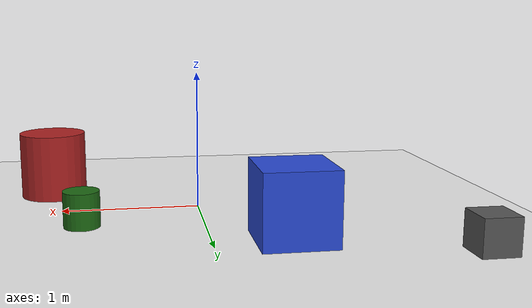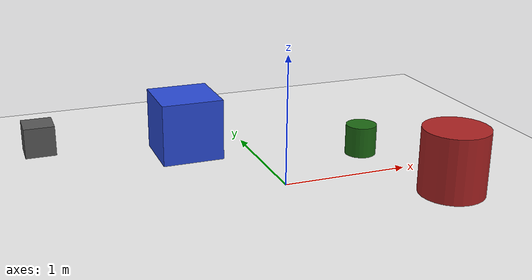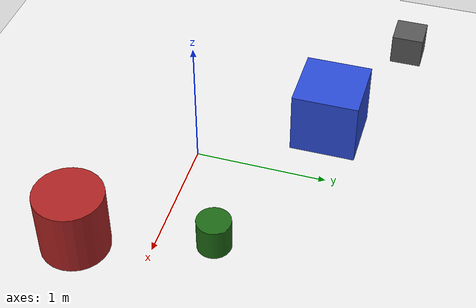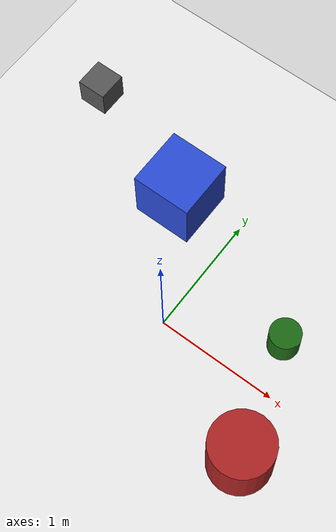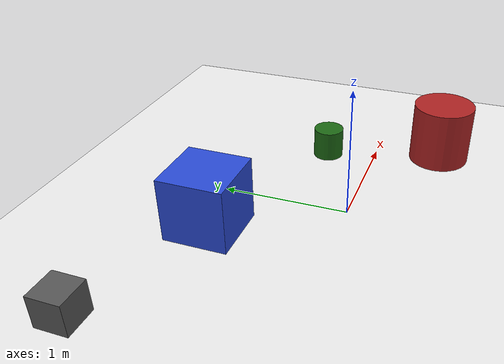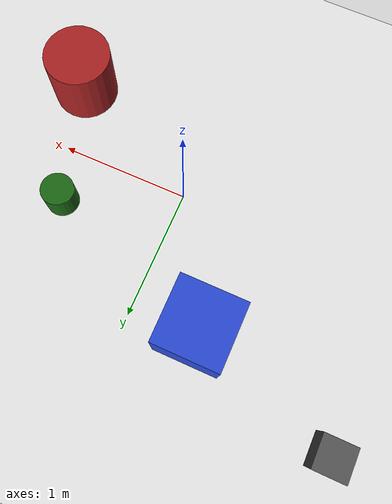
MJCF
<?xml version="1.0" ?><mujoco>
		<visual>
    			<headlight ambient="1.0 1.0 1.0" diffuse=".0 .0 .0" specular="0.0 0.0 0.0"/>
		</visual>
    	<compiler angle="radian" coordinate="local" meshdir="../stls/fetch" texturedir="../textures"/>
    	<option cone="elliptic" timestep="0.001"/>

    	<asset>
        		<texture builtin="gradient" height="32" rgb1="0.44 0.85 0.56" rgb2="0.46 0.87 0.58" type="skybox" width="32"/>
        		<texture file="block.png" gridlayout=".U..LFRB.D.." gridsize="3 4" name="texture_block"/>

        		<material name="seg_mat" reflectance="0" shininess="0" specular="0"/>
        		<material name="floor_mat" reflectance="0" rgba="0.2 0.2 0.2 1" shininess="0.5" specular="0"/>
        		<material name="table_mat" reflectance="0" rgba="0.93 0.93 0.93 1" shininess="0.5" specular="0" texrepeat="1 1"/>
        		<material name="block_mat" reflectance="0" rgba="0.2 0.2 0.2 1" shininess="0.5" specular="0"/>
        		<material name="puck_mat" reflectance="0" rgba="0.2 0.2 0.2 1" shininess="0.5" specular="0"/>
    	</asset>

    	<worldbody>
        		<geom material="table_mat" name="table0" pos="0 0 -0.05" size="2.5 2.5 0.1" type="plane"/>

        		<body name="external_camera_body_0" pos="0 0 0">
            			<camera euler="0 1.3 1.57" fovy="38" name="external_camera_0" pos="2.15 1.0 0.4"/>
        		</body>
        		<body name="external_camera_body_1" pos="0 0 0">
            			<camera euler="0 0.1 1.57" fovy="60" name="external_camera_1" pos="1.4 1.0 0.9"/>
        		</body>
        		<body mocap="true" name="camera_mover" pos="0 0 0.4">
            			<camera euler="0 1.3 1.57" fovy="38" name="agent_camera"/>
        		</body>
    		<body name="0" pos="-1.6574794868343332 1.319970412881243 0.125">			<geom condim="4" friction="1.0 0.5 0.5" mass=".1" name="0" pos="0 0 0" rgba="0.3411764705882353 0.3411764705882353 0.3411764705882353 1.0" size="0.125 0.125 0.125" solimp="0.99 0.99 0.001" solref="0.001 1" type="box"/>			<joint damping=".01" name="0" type="free"/>			<site name="0" pos="0 0 0" rgba="1 0 0 1" size="0.002 0.002 0.002" type="sphere"/>		</body>		<body name="1" pos="0.8332898485180791 0.4018103923094434 0.125">			<geom condim="4" friction="1.0 0.5 0.5" mass=".1" name="1" pos="0 0 0" rgba="0.11372549019607843 0.4117647058823529 0.0784313725490196 1.0" size="0.125 0.125 0.125" solimp="0.99 0.99 0.001" solref="0.001 1" type="cylinder"/>			<joint damping=".01" name="1" type="free"/>			<site name="1" pos="0 0 0" rgba="1 0 0 1" size="0.002 0.002 0.002" type="sphere"/>		</body>		<body name="2" pos="-0.5189762657008687 0.9038676829821637 0.25">			<geom condim="4" friction="1.0 0.5 0.5" mass=".1" name="2" pos="0 0 0" rgba="0.16470588235294117 0.29411764705882354 0.8431372549019608 1.0" size="0.25 0.25 0.25" solimp="0.99 0.99 0.001" solref="0.001 1" type="box"/>			<joint damping=".01" name="2" type="free"/>			<site name="2" pos="0 0 0" rgba="1 0 0 1" size="0.002 0.002 0.002" type="sphere"/>		</body>		<body name="3" pos="1.0944310082490456 -0.5275665077779137 0.25">			<geom condim="4" friction="1.0 0.5 0.5" mass=".1" name="3" pos="0 0 0" rgba="0.6784313725490196 0.13725490196078433 0.13725490196078433 1.0" size="0.25 0.25 0.25" solimp="0.99 0.99 0.001" solref="0.001 1" type="cylinder"/>			<joint damping=".01" name="3" type="free"/>			<site name="3" pos="0 0 0" rgba="1 0 0 1" size="0.002 0.002 0.002" type="sphere"/>		</body>	</worldbody>
</mujoco>
